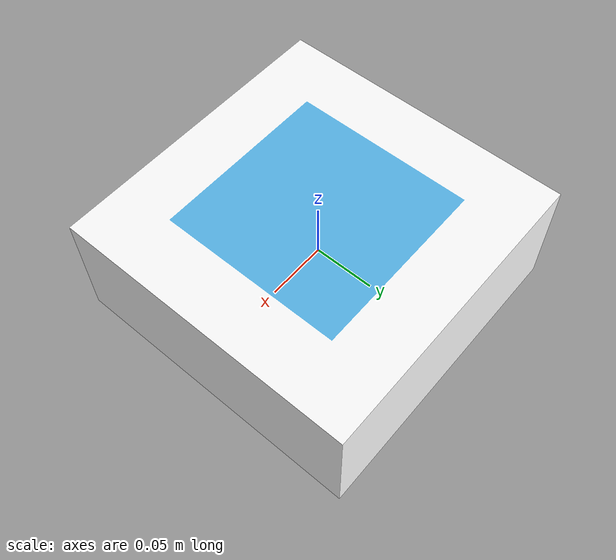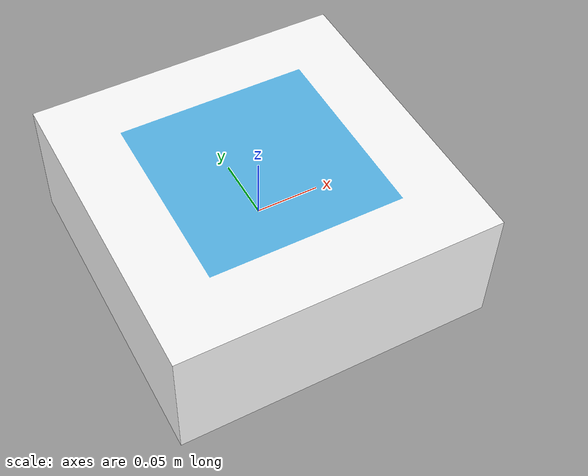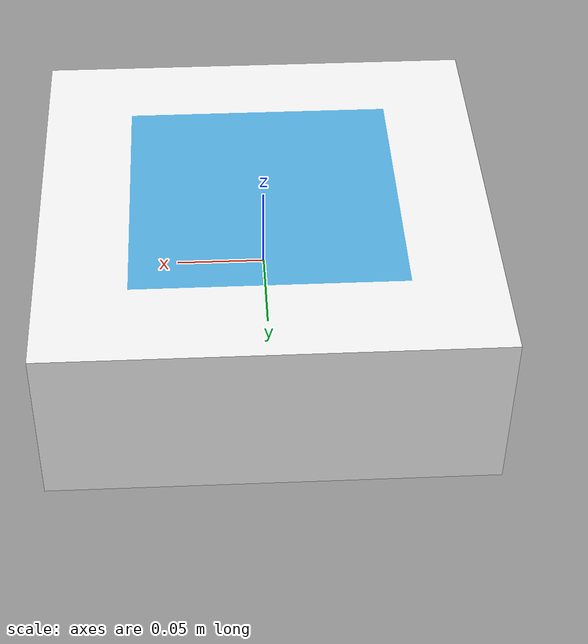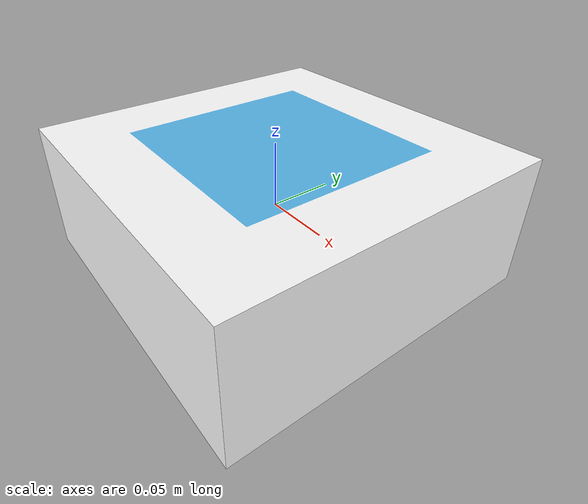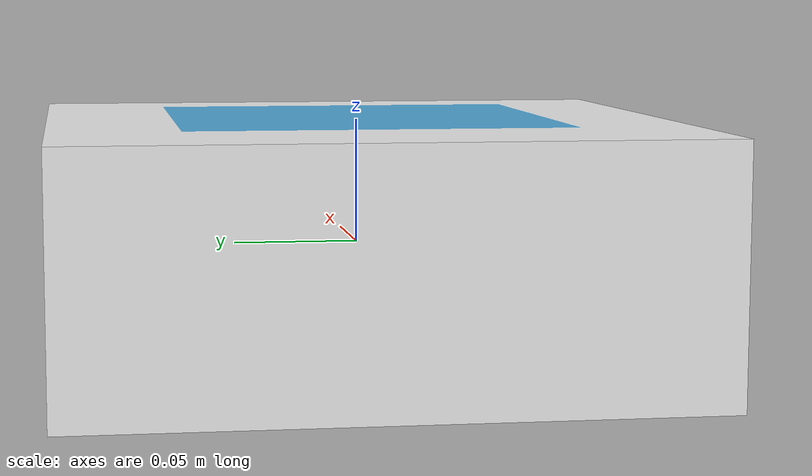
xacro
<?xml version="1.0"?>
<robot name="aruco" xmlns:xacro="http://ros.org/wiki/xacro">

    <!-- Parâmetros -->
    <xacro:property name="cubo_mass" value="2" />  <!-- Massa do cubo -->
    <link name="world"/>
    <!-- Link do cubo -->
    <link name="cubo_link">
    <visual>
        <geometry>
        <mesh filename="package://smartfactory_description/meshes/aruco.dae"  scale="1 1 1"/>
        </geometry>
    </visual>

    <collision>
        <geometry>
        <box size="0.25 0.25 0.1"/>
        </geometry>
    </collision>

    <inertial>
        <mass value="${cubo_mass}"/>
        <inertia ixx="0.1" ixy="0.0" ixz="0.0" iyy="0.1" iyz="0.0" izz="0.1"/>
    </inertial>

    <!-- Propriedades de atrito e colisão para evitar quedas -->
        <surface>
            <friction>
                <ode>
                    <mu>5.0</mu>   <!-- Aumenta o atrito para evitar que ele escorregue -->
                    <mu2>5.0</mu2>
                </ode>
            </friction>
            <bounce>
                <restitution_coefficient>0.0</restitution_coefficient>  <!-- Evitar que ele "quique" -->
            </bounce>
        </surface>

    </link>
    <gazebo reference="cubo_link">
        <gravity>true</gravity> <!-- Ativa a gravidade -->
    </gazebo>

    <!-- Joint fixa o cubo no ambiente -->
    <joint name="cubo_fixed_joint" type="floating">
    <parent link="world"/>
    <child link="cubo_link"/>
    </joint>

</robot>
